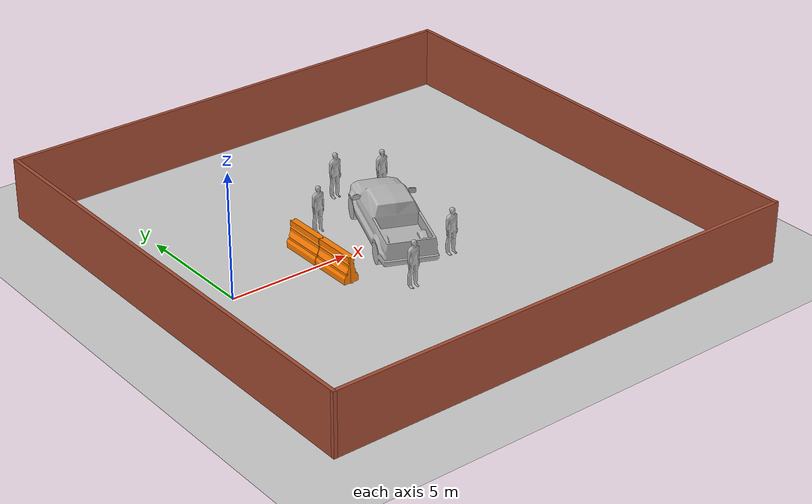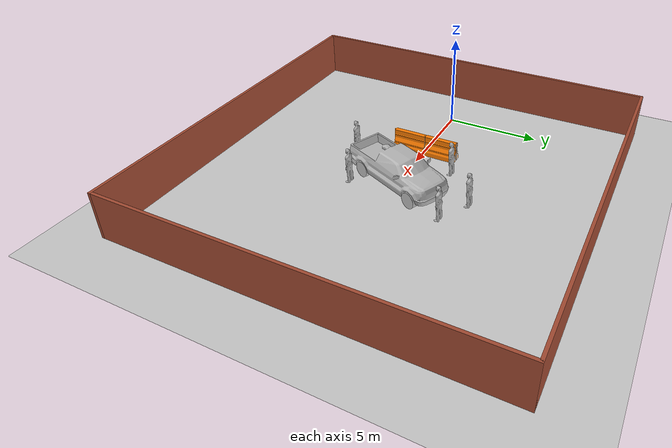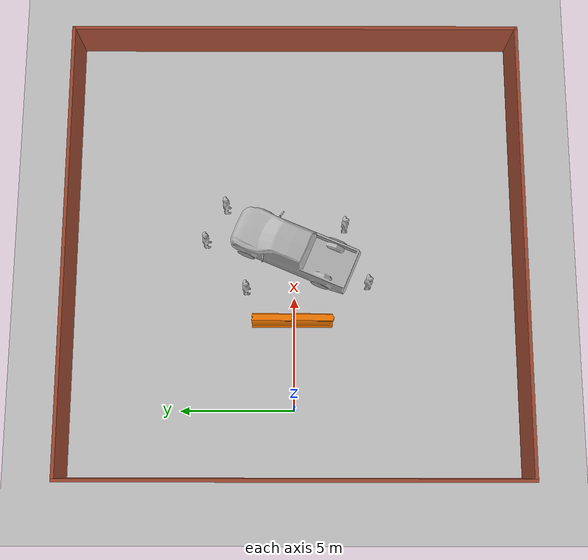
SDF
<sdf version="1.7">
 <world name="default">
  <light name="sun" type="directional">
   <pose>0 0 10 0 -0 0</pose>
   <diffuse>0.8 0.8 0.8 1</diffuse>
   <specular>0.2 0.2 0.2 1</specular>
   <attenuation>
    <range>1000</range>
    <constant>0.9</constant>
    <linear>0.01</linear>
    <quadratic>0.001</quadratic>
   </attenuation>
   <direction>-0.5 0.1 -0.9</direction>
   <spot><inner_angle>0</inner_angle><outer_angle>0</outer_angle><falloff>0</falloff></spot>
  </light>
  <model name="ground_plane">
   <static>1</static>
   <link name="link">
    <collision name="collision">
     <geometry><plane><normal>0 0 1</normal><size>100 100</size></plane></geometry>
     <surface>
      <contact><collide_bitmask>65535</collide_bitmask></contact>
      <friction><ode><mu>100</mu><mu2>50</mu2></ode></friction>
     </surface>
    </collision>
    <visual name="visual">
     <cast_shadows>0</cast_shadows>
     <geometry><plane><normal>0 0 1</normal><size>100 100</size></plane></geometry>
     <material>
      <script><uri>file://media/materials/scripts/gazebo.material</uri><name>Gazebo/Grey</name></script>
     </material>
    </visual>
   </link>
  </model>
  <gravity>0 0 -9.8</gravity>
  <magnetic_field>6e-06 2.3e-05 -4.2e-05</magnetic_field>
  <atmosphere type="adiabatic"/>
  <physics type="ode">
   <max_step_size>0.001</max_step_size>
   <real_time_factor>1</real_time_factor>
   <real_time_update_rate>1000</real_time_update_rate>
  </physics>
  <scene><ambient>0.4 0.4 0.4 1</ambient><background>0.7 0.7 0.7 1</background><shadows>1</shadows></scene>
  <spherical_coordinates>
   <surface_model>EARTH_WGS84</surface_model>
   <latitude_deg>0</latitude_deg>
   <longitude_deg>0</longitude_deg>
   <elevation>0</elevation>
   <heading_deg>0</heading_deg>
  </spherical_coordinates>
  <model name="drc_practice_organge_jersey_barrier">
   <static>1</static>
   <link name="link">
    <visual name="visual">
     <geometry>
      <mesh><uri>model://drc_practice_orange_jersey_barrier/meshes/jersey_barrier.dae</uri></mesh>
     </geometry>
    </visual>
    <collision name="collision">
     <geometry>
      <mesh><uri>model://drc_practice_orange_jersey_barrier/meshes/jersey_barrier.dae</uri></mesh>
     </geometry>
    </collision>
   </link>
   <pose>4 1 0 0 -0 0</pose>
  </model>
  <model name="drc_practice_organge_jersey_barrier_0">
   <static>1</static>
   <link name="link">
    <visual name="visual">
     <geometry>
      <mesh><uri>model://drc_practice_orange_jersey_barrier/meshes/jersey_barrier.dae</uri></mesh>
     </geometry>
    </visual>
    <collision name="collision">
     <geometry>
      <mesh><uri>model://drc_practice_orange_jersey_barrier/meshes/jersey_barrier.dae</uri></mesh>
     </geometry>
    </collision>
   </link>
   <pose>4 -0.8 0 0 -0 0</pose>
  </model>
  <model name="wall2x2">
   <pose>7 0 0 0 -0 0</pose>
   <link name="Wall_10">
    <collision name="Wall_10_Collision">
     <geometry><box><size>20 0.15 2.5</size></box></geometry>
     <pose>0 0 1.25 0 -0 0</pose>
    </collision>
    <visual name="Wall_10_Visual">
     <pose>0 0 1.25 0 -0 0</pose>
     <geometry><box><size>20 0.15 2.5</size></box></geometry>
     <material>
      <script><uri>file://media/materials/scripts/gazebo.material</uri><name>Gazebo/Bricks</name></script>
      <ambient>1 1 1 1</ambient>
     </material>
     <meta><layer>0</layer></meta>
    </visual>
    <pose>-0 -9.925 0 0 -0 3.14159</pose>
   </link>
   <link name="Wall_11">
    <collision name="Wall_11_Collision">
     <geometry><box><size>20 0.15 2.5</size></box></geometry>
     <pose>0 0 1.25 0 -0 0</pose>
    </collision>
    <visual name="Wall_11_Visual">
     <pose>0 0 1.25 0 -0 0</pose>
     <geometry><box><size>20 0.15 2.5</size></box></geometry>
     <material>
      <script><uri>file://media/materials/scripts/gazebo.material</uri><name>Gazebo/Bricks</name></script>
      <ambient>1 1 1 1</ambient>
     </material>
     <meta><layer>0</layer></meta>
    </visual>
    <pose>-9.925 -0 0 0 -0 1.5708</pose>
   </link>
   <link name="Wall_8">
    <collision name="Wall_8_Collision">
     <geometry><box><size>20 0.15 2.5</size></box></geometry>
     <pose>0 0 1.25 0 -0 0</pose>
    </collision>
    <visual name="Wall_8_Visual">
     <pose>0 0 1.25 0 -0 0</pose>
     <geometry><box><size>20 0.15 2.5</size></box></geometry>
     <material>
      <script><uri>file://media/materials/scripts/gazebo.material</uri><name>Gazebo/Bricks</name></script>
      <ambient>1 1 1 1</ambient>
     </material>
     <meta><layer>0</layer></meta>
    </visual>
    <pose>-0 9.925 0 0 -0 0</pose>
   </link>
   <link name="Wall_9">
    <collision name="Wall_9_Collision">
     <geometry><box><size>20 0.15 2.5</size></box></geometry>
     <pose>0 0 1.25 0 -0 0</pose>
    </collision>
    <visual name="Wall_9_Visual">
     <pose>0 0 1.25 0 -0 0</pose>
     <geometry><box><size>20 0.15 2.5</size></box></geometry>
     <material>
      <script><uri>file://media/materials/scripts/gazebo.material</uri><name>Gazebo/Bricks</name></script>
      <ambient>1 1 1 1</ambient>
     </material>
     <meta><layer>0</layer></meta>
    </visual>
    <pose>9.925 -0 0 0 -0 -1.5708</pose>
   </link>
   <static>1</static>
  </model>
  <model name="pickup">
   <static>1</static>
   <link name="link">
    <collision name="collision">
     <pose>0 0 0 0 0 -1.5708</pose>
     <geometry><mesh><uri>model://pickup/meshes/pickup.dae</uri></mesh></geometry>
    </collision>
    <visual name="visual">
     <pose>0 0 0 0 0 -1.5708</pose>
     <geometry><mesh><uri>model://pickup/meshes/pickup.dae</uri></mesh></geometry>
    </visual>
   </link>
   <pose>7.20869 0.130298 0 0 -0 1.17155</pose>
  </model>
  <model name="person_standing">
   <link name="link">
    <inertial>
     <pose>0 -0.1 0.95 0 -0 0</pose>
     <mass>80</mass>
     <inertia><ixx>24.88</ixx><ixy>0</ixy><ixz>0</ixz><iyy>25.73</iyy><iyz>0</iyz><izz>2.48</izz></inertia>
    </inertial>
    <collision name="bottom">
     <pose>0 -0.1 0.01 0 -0 0</pose>
     <geometry><box><size>0.5 0.35 0.02</size></box></geometry>
    </collision>
    <collision name="person">
     <pose>0 0 0.02 0.04 -0 0</pose>
     <geometry><mesh><uri>model://person_standing/meshes/standing.dae</uri></mesh></geometry>
    </collision>
    <visual name="visual">
     <pose>0 0 0.02 0.04 -0 0</pose>
     <geometry><mesh><uri>model://person_standing/meshes/standing.dae</uri></mesh></geometry>
    </visual>
   </link>
   <pose>5.33593 2.21679 0 0 -1e-06 -0.000304</pose>
  </model>
  <model name="person_standing_0">
   <link name="link">
    <inertial>
     <pose>0 -0.1 0.95 0 -0 0</pose>
     <mass>80</mass>
     <inertia><ixx>24.88</ixx><ixy>0</ixy><ixz>0</ixz><iyy>25.73</iyy><iyz>0</iyz><izz>2.48</izz></inertia>
    </inertial>
    <collision name="bottom">
     <pose>0 -0.1 0.01 0 -0 0</pose>
     <geometry><box><size>0.5 0.35 0.02</size></box></geometry>
    </collision>
    <collision name="person">
     <pose>0 0 0.02 0.04 -0 0</pose>
     <geometry><mesh><uri>model://person_standing/meshes/standing.dae</uri></mesh></geometry>
    </collision>
    <visual name="visual">
     <pose>0 0 0.02 0.04 -0 0</pose>
     <geometry><mesh><uri>model://person_standing/meshes/standing.dae</uri></mesh></geometry>
    </visual>
   </link>
   <pose>7.47378 4.01871 -1e-06 -1e-06 1e-06 -0.000545</pose>
  </model>
  <model name="person_standing_1">
   <link name="link">
    <inertial>
     <pose>0 -0.1 0.95 0 -0 0</pose>
     <mass>80</mass>
     <inertia><ixx>24.88</ixx><ixy>0</ixy><ixz>0</ixz><iyy>25.73</iyy><iyz>0</iyz><izz>2.48</izz></inertia>
    </inertial>
    <collision name="bottom">
     <pose>0 -0.1 0.01 0 -0 0</pose>
     <geometry><box><size>0.5 0.35 0.02</size></box></geometry>
    </collision>
    <collision name="person">
     <pose>0 0 0.02 0.04 -0 0</pose>
     <geometry><mesh><uri>model://person_standing/meshes/standing.dae</uri></mesh></geometry>
    </collision>
    <visual name="visual">
     <pose>0 0 0.02 0.04 -0 0</pose>
     <geometry><mesh><uri>model://person_standing/meshes/standing.dae</uri></mesh></geometry>
    </visual>
   </link>
   <pose>8.1817 -2.1602 -1e-06 -1e-06 -1e-06 0.000144</pose>
  </model>
  <model name="person_standing_2">
   <link name="link">
    <inertial>
     <pose>0 -0.1 0.95 0 -0 0</pose>
     <mass>80</mass>
     <inertia><ixx>24.88</ixx><ixy>0</ixy><ixz>0</ixz><iyy>25.73</iyy><iyz>0</iyz><izz>2.48</izz></inertia>
    </inertial>
    <collision name="bottom">
     <pose>0 -0.1 0.01 0 -0 0</pose>
     <geometry><box><size>0.5 0.35 0.02</size></box></geometry>
    </collision>
    <collision name="person">
     <pose>0 0 0.02 0.04 -0 0</pose>
     <geometry><mesh><uri>model://person_standing/meshes/standing.dae</uri></mesh></geometry>
    </collision>
    <visual name="visual">
     <pose>0 0 0.02 0.04 -0 0</pose>
     <geometry><mesh><uri>model://person_standing/meshes/standing.dae</uri></mesh></geometry>
    </visual>
   </link>
   <pose>5.57349 -3.17966 -1e-06 -1e-06 1e-06 -0.000269</pose>
  </model>
  <model name="person_standing_3">
   <link name="link">
    <inertial>
     <pose>0 -0.1 0.95 0 -0 0</pose>
     <mass>80</mass>
     <inertia><ixx>24.88</ixx><ixy>0</ixy><ixz>0</ixz><iyy>25.73</iyy><iyz>0</iyz><izz>2.48</izz></inertia>
    </inertial>
    <collision name="bottom">
     <pose>0 -0.1 0.01 0 -0 0</pose>
     <geometry><box><size>0.5 0.35 0.02</size></box></geometry>
    </collision>
    <collision name="person">
     <pose>0 0 0.02 0.04 -0 0</pose>
     <geometry><mesh><uri>model://person_standing/meshes/standing.dae</uri></mesh></geometry>
    </collision>
    <visual name="visual">
     <pose>0 0 0.02 0.04 -0 0</pose>
     <geometry><mesh><uri>model://person_standing/meshes/standing.dae</uri></mesh></geometry>
    </visual>
   </link>
   <pose>9.07163 3.1372 -0 -1e-06 1e-06 -0.000131</pose>
  </model>
 </world>
</sdf>
